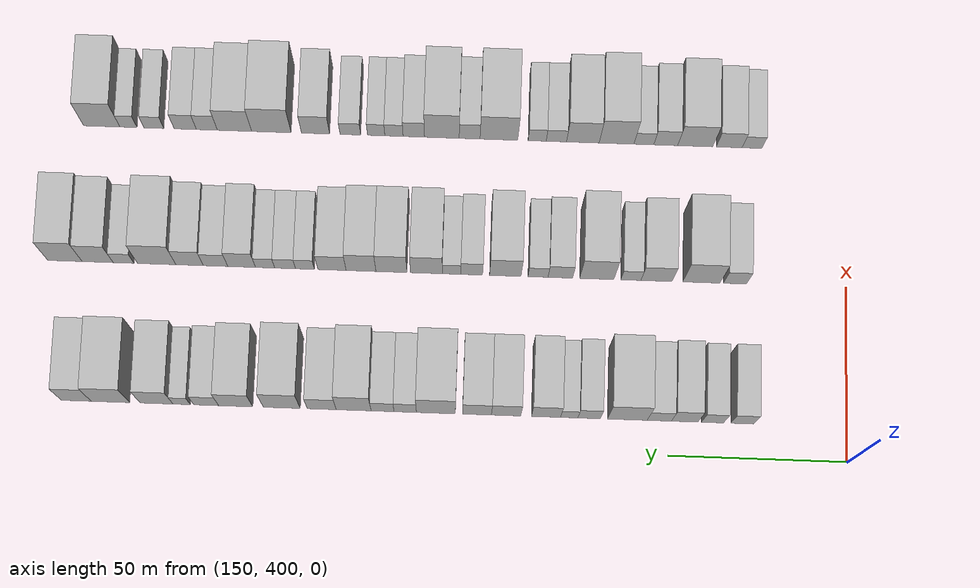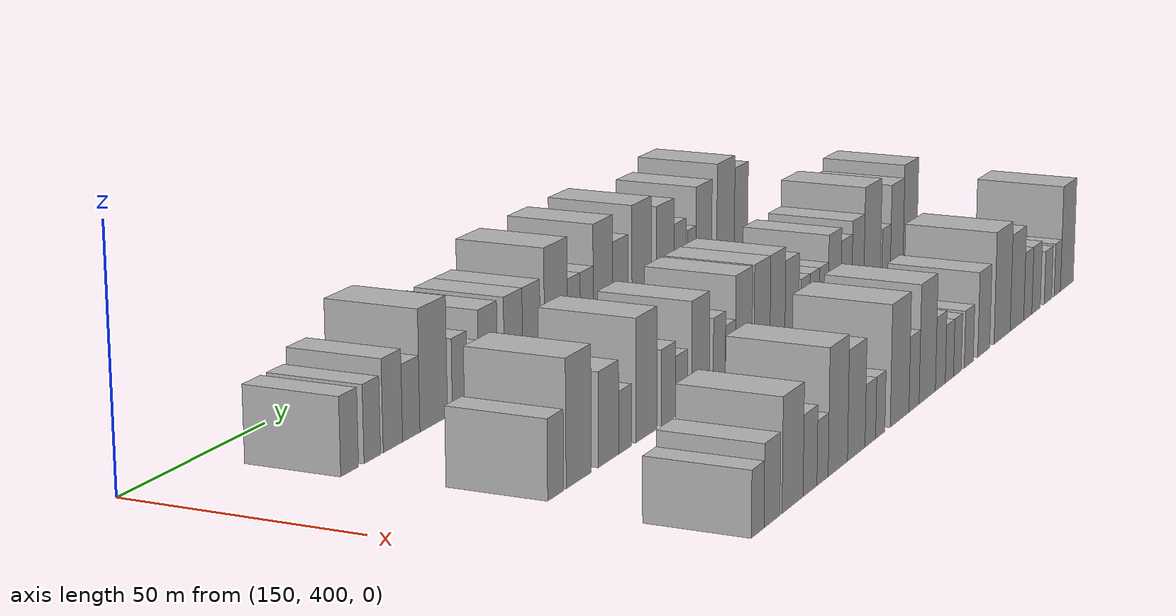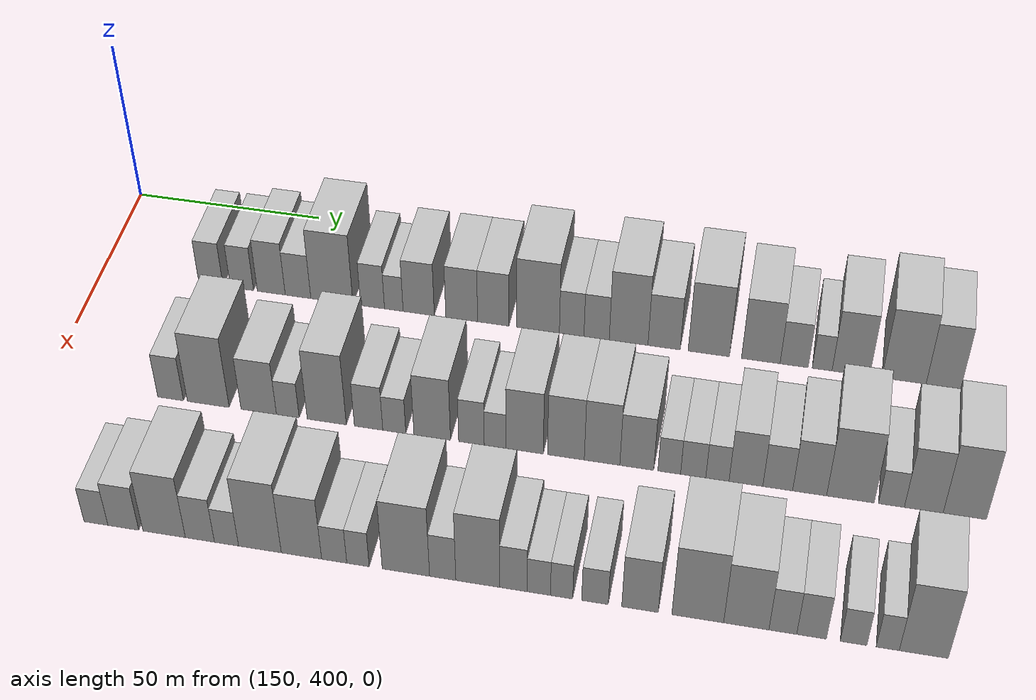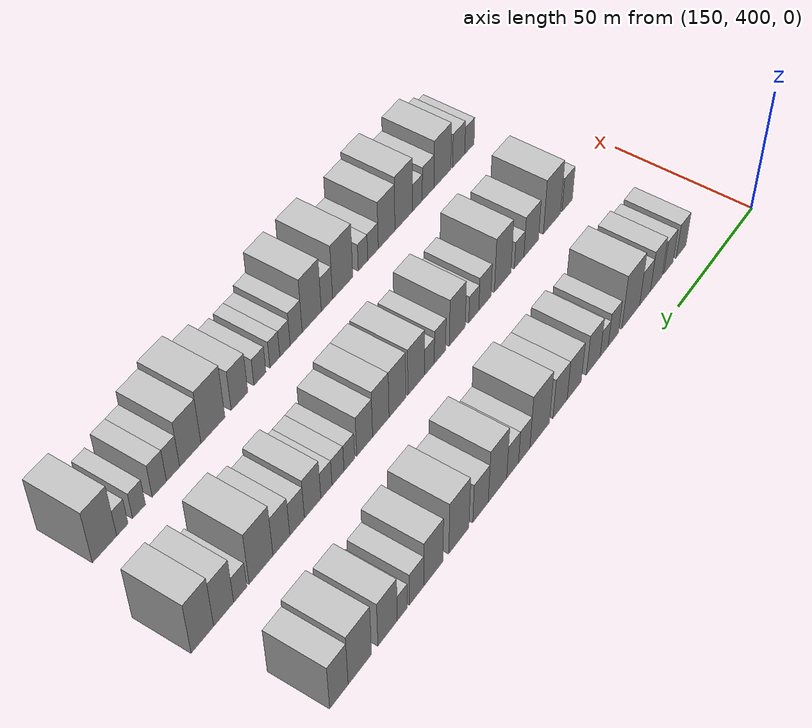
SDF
<sdf version="1.6">
 <world name="default">
  <model name="building_538">
   <static>1</static>
   <pose>170.0000 429.3641 0 0.000000 0.000000 0.000000</pose>
   <link name="link">
    <pose>0 0 7.50 0 0 0</pose>
    <collision name="collision"><geometry><box><size>20.0000 6.5163 15.0000</size></box></geometry></collision>
    <visual name="visual">
     <cast_shadows>0</cast_shadows>
     <geometry><box><size>20.0000 6.5163 15.0000</size></box></geometry>
     <material>
      <script>
       <uri>model://HANNAS_wall/materials/scripts</uri>
       <uri>model://HANNAS_wall/materials/textures</uri>
       <name>vrc/HANNAS_wall</name>
      </script>
     </material>
    </visual>
   </link>
  </model>
  <model name="building_539">
   <static>1</static>
   <pose>170.0000 437.7236 0 0.000000 0.000000 0.000000</pose>
   <link name="link">
    <pose>0 0 7.50 0 0 0</pose>
    <collision name="collision"><geometry><box><size>20.0000 6.2025 15.0000</size></box></geometry></collision>
    <visual name="visual">
     <cast_shadows>0</cast_shadows>
     <geometry><box><size>20.0000 6.2025 15.0000</size></box></geometry>
     <material>
      <script>
       <uri>model://HANNAS_wall/materials/scripts</uri>
       <uri>model://HANNAS_wall/materials/textures</uri>
       <name>vrc/HANNAS_wall</name>
      </script>
     </material>
    </visual>
   </link>
  </model>
  <model name="building_540">
   <static>1</static>
   <pose>170.0000 445.5590 0 0.000000 0.000000 0.000000</pose>
   <link name="link">
    <pose>0 0 9.00 0 0 0</pose>
    <collision name="collision"><geometry><box><size>20.0000 7.4683 18.0000</size></box></geometry></collision>
    <visual name="visual">
     <cast_shadows>0</cast_shadows>
     <geometry><box><size>20.0000 7.4683 18.0000</size></box></geometry>
     <material>
      <script>
       <uri>model://HANNAS_wall/materials/scripts</uri>
       <uri>model://HANNAS_wall/materials/textures</uri>
       <name>vrc/HANNAS_wall</name>
      </script>
     </material>
    </visual>
   </link>
  </model>
  <model name="building_541">
   <static>1</static>
   <pose>170.0000 452.6994 0 0.000000 0.000000 0.000000</pose>
   <link name="link">
    <pose>0 0 7.50 0 0 0</pose>
    <collision name="collision"><geometry><box><size>20.0000 6.8127 15.0000</size></box></geometry></collision>
    <visual name="visual">
     <cast_shadows>0</cast_shadows>
     <geometry><box><size>20.0000 6.8127 15.0000</size></box></geometry>
     <material>
      <script>
       <uri>model://HANNAS_wall/materials/scripts</uri>
       <uri>model://HANNAS_wall/materials/textures</uri>
       <name>vrc/HANNAS_wall</name>
      </script>
     </material>
    </visual>
   </link>
  </model>
  <model name="building_542">
   <static>1</static>
   <pose>170.0000 461.6896 0 0.000000 0.000000 0.000000</pose>
   <link name="link">
    <pose>0 0 12.00 0 0 0</pose>
    <collision name="collision"><geometry><box><size>20.0000 11.1678 24.0000</size></box></geometry></collision>
    <visual name="visual">
     <cast_shadows>0</cast_shadows>
     <geometry><box><size>20.0000 11.1678 24.0000</size></box></geometry>
     <material>
      <script>
       <uri>model://HANNAS_wall/materials/scripts</uri>
       <uri>model://HANNAS_wall/materials/textures</uri>
       <name>vrc/HANNAS_wall</name>
      </script>
     </material>
    </visual>
   </link>
  </model>
  <model name="building_543">
   <static>1</static>
   <pose>170.0000 472.4257 0 0.000000 0.000000 0.000000</pose>
   <link name="link">
    <pose>0 0 7.50 0 0 0</pose>
    <collision name="collision"><geometry><box><size>20.0000 6.3045 15.0000</size></box></geometry></collision>
    <visual name="visual">
     <cast_shadows>0</cast_shadows>
     <geometry><box><size>20.0000 6.3045 15.0000</size></box></geometry>
     <material>
      <script>
       <uri>model://HANNAS_wall/materials/scripts</uri>
       <uri>model://HANNAS_wall/materials/textures</uri>
       <name>vrc/HANNAS_wall</name>
      </script>
     </material>
    </visual>
   </link>
  </model>
  <model name="building_544">
   <static>1</static>
   <pose>170.0000 478.0195 0 0.000000 0.000000 0.000000</pose>
   <link name="link">
    <pose>0 0 6.00 0 0 0</pose>
    <collision name="collision"><geometry><box><size>20.0000 4.8831 12.0000</size></box></geometry></collision>
    <visual name="visual">
     <cast_shadows>0</cast_shadows>
     <geometry><box><size>20.0000 4.8831 12.0000</size></box></geometry>
     <material>
      <script>
       <uri>model://HANNAS_wall/materials/scripts</uri>
       <uri>model://HANNAS_wall/materials/textures</uri>
       <name>vrc/HANNAS_wall</name>
      </script>
     </material>
    </visual>
   </link>
  </model>
  <model name="building_545">
   <static>1</static>
   <pose>170.0000 484.5428 0 0.000000 0.000000 0.000000</pose>
   <link name="link">
    <pose>0 0 9.00 0 0 0</pose>
    <collision name="collision"><geometry><box><size>20.0000 8.1633 18.0000</size></box></geometry></collision>
    <visual name="visual">
     <cast_shadows>0</cast_shadows>
     <geometry><box><size>20.0000 8.1633 18.0000</size></box></geometry>
     <material>
      <script>
       <uri>model://HANNAS_wall/materials/scripts</uri>
       <uri>model://HANNAS_wall/materials/textures</uri>
       <name>vrc/HANNAS_wall</name>
      </script>
     </material>
    </visual>
   </link>
  </model>
  <model name="building_546">
   <static>1</static>
   <pose>170.0000 495.7560 0 0.000000 0.000000 0.000000</pose>
   <link name="link">
    <pose>0 0 9.00 0 0 0</pose>
    <collision name="collision"><geometry><box><size>20.0000 8.2631 18.0000</size></box></geometry></collision>
    <visual name="visual">
     <cast_shadows>0</cast_shadows>
     <geometry><box><size>20.0000 8.2631 18.0000</size></box></geometry>
     <material>
      <script>
       <uri>model://HANNAS_wall/materials/scripts</uri>
       <uri>model://HANNAS_wall/materials/textures</uri>
       <name>vrc/HANNAS_wall</name>
      </script>
     </material>
    </visual>
   </link>
  </model>
  <model name="building_547">
   <static>1</static>
   <pose>170.0000 503.9485 0 0.000000 0.000000 0.000000</pose>
   <link name="link">
    <pose>0 0 9.00 0 0 0</pose>
    <collision name="collision"><geometry><box><size>20.0000 8.1218 18.0000</size></box></geometry></collision>
    <visual name="visual">
     <cast_shadows>0</cast_shadows>
     <geometry><box><size>20.0000 8.1218 18.0000</size></box></geometry>
     <material>
      <script>
       <uri>model://HANNAS_wall/materials/scripts</uri>
       <uri>model://HANNAS_wall/materials/textures</uri>
       <name>vrc/HANNAS_wall</name>
      </script>
     </material>
    </visual>
   </link>
  </model>
  <model name="building_548">
   <static>1</static>
   <pose>170.0000 515.4771 0 0.000000 0.000000 0.000000</pose>
   <link name="link">
    <pose>0 0 12.00 0 0 0</pose>
    <collision name="collision"><geometry><box><size>20.0000 10.9354 24.0000</size></box></geometry></collision>
    <visual name="visual">
     <cast_shadows>0</cast_shadows>
     <geometry><box><size>20.0000 10.9354 24.0000</size></box></geometry>
     <material>
      <script>
       <uri>model://HANNAS_wall/materials/scripts</uri>
       <uri>model://HANNAS_wall/materials/textures</uri>
       <name>vrc/HANNAS_wall</name>
      </script>
     </material>
    </visual>
   </link>
  </model>
  <model name="building_549">
   <static>1</static>
   <pose>170.0000 524.0862 0 0.000000 0.000000 0.000000</pose>
   <link name="link">
    <pose>0 0 7.50 0 0 0</pose>
    <collision name="collision"><geometry><box><size>20.0000 6.2829 15.0000</size></box></geometry></collision>
    <visual name="visual">
     <cast_shadows>0</cast_shadows>
     <geometry><box><size>20.0000 6.2829 15.0000</size></box></geometry>
     <material>
      <script>
       <uri>model://HANNAS_wall/materials/scripts</uri>
       <uri>model://HANNAS_wall/materials/textures</uri>
       <name>vrc/HANNAS_wall</name>
      </script>
     </material>
    </visual>
   </link>
  </model>
  <model name="building_550">
   <static>1</static>
   <pose>170.0000 530.4458 0 0.000000 0.000000 0.000000</pose>
   <link name="link">
    <pose>0 0 7.50 0 0 0</pose>
    <collision name="collision"><geometry><box><size>20.0000 6.4365 15.0000</size></box></geometry></collision>
    <visual name="visual">
     <cast_shadows>0</cast_shadows>
     <geometry><box><size>20.0000 6.4365 15.0000</size></box></geometry>
     <material>
      <script>
       <uri>model://HANNAS_wall/materials/scripts</uri>
       <uri>model://HANNAS_wall/materials/textures</uri>
       <name>vrc/HANNAS_wall</name>
      </script>
     </material>
    </visual>
   </link>
  </model>
  <model name="building_551">
   <static>1</static>
   <pose>170.0000 538.5780 0 0.000000 0.000000 0.000000</pose>
   <link name="link">
    <pose>0 0 12.00 0 0 0</pose>
    <collision name="collision"><geometry><box><size>20.0000 9.8278 24.0000</size></box></geometry></collision>
    <visual name="visual">
     <cast_shadows>0</cast_shadows>
     <geometry><box><size>20.0000 9.8278 24.0000</size></box></geometry>
     <material>
      <script>
       <uri>model://HANNAS_wall/materials/scripts</uri>
       <uri>model://HANNAS_wall/materials/textures</uri>
       <name>vrc/HANNAS_wall</name>
      </script>
     </material>
    </visual>
   </link>
  </model>
  <model name="building_552">
   <static>1</static>
   <pose>170.0000 547.5596 0 0.000000 0.000000 0.000000</pose>
   <link name="link">
    <pose>0 0 9.00 0 0 0</pose>
    <collision name="collision"><geometry><box><size>20.0000 8.1355 18.0000</size></box></geometry></collision>
    <visual name="visual">
     <cast_shadows>0</cast_shadows>
     <geometry><box><size>20.0000 8.1355 18.0000</size></box></geometry>
     <material>
      <script>
       <uri>model://HANNAS_wall/materials/scripts</uri>
       <uri>model://HANNAS_wall/materials/textures</uri>
       <name>vrc/HANNAS_wall</name>
      </script>
     </material>
    </visual>
   </link>
  </model>
  <model name="building_553">
   <static>1</static>
   <pose>170.0000 558.8087 0 0.000000 0.000000 0.000000</pose>
   <link name="link">
    <pose>0 0 12.00 0 0 0</pose>
    <collision name="collision"><geometry><box><size>20.0000 10.3627 24.0000</size></box></geometry></collision>
    <visual name="visual">
     <cast_shadows>0</cast_shadows>
     <geometry><box><size>20.0000 10.3627 24.0000</size></box></geometry>
     <material>
      <script>
       <uri>model://HANNAS_wall/materials/scripts</uri>
       <uri>model://HANNAS_wall/materials/textures</uri>
       <name>vrc/HANNAS_wall</name>
      </script>
     </material>
    </visual>
   </link>
  </model>
  <model name="building_554">
   <static>1</static>
   <pose>170.0000 571.7880 0 0.000000 0.000000 0.000000</pose>
   <link name="link">
    <pose>0 0 10.50 0 0 0</pose>
    <collision name="collision"><geometry><box><size>20.0000 9.5958 21.0000</size></box></geometry></collision>
    <visual name="visual">
     <cast_shadows>0</cast_shadows>
     <geometry><box><size>20.0000 9.5958 21.0000</size></box></geometry>
     <material>
      <script>
       <uri>model://HANNAS_wall/materials/scripts</uri>
       <uri>model://HANNAS_wall/materials/textures</uri>
       <name>vrc/HANNAS_wall</name>
      </script>
     </material>
    </visual>
   </link>
  </model>
  <model name="building_555">
   <static>1</static>
   <pose>170.0000 580.0705 0 0.000000 0.000000 0.000000</pose>
   <link name="link">
    <pose>0 0 7.50 0 0 0</pose>
    <collision name="collision"><geometry><box><size>20.0000 6.9693 15.0000</size></box></geometry></collision>
    <visual name="visual">
     <cast_shadows>0</cast_shadows>
     <geometry><box><size>20.0000 6.9693 15.0000</size></box></geometry>
     <material>
      <script>
       <uri>model://HANNAS_wall/materials/scripts</uri>
       <uri>model://HANNAS_wall/materials/textures</uri>
       <name>vrc/HANNAS_wall</name>
      </script>
     </material>
    </visual>
   </link>
  </model>
  <model name="building_556">
   <static>1</static>
   <pose>170.0000 586.9925 0 0.000000 0.000000 0.000000</pose>
   <link name="link">
    <pose>0 0 6.00 0 0 0</pose>
    <collision name="collision"><geometry><box><size>20.0000 4.8746 12.0000</size></box></geometry></collision>
    <visual name="visual">
     <cast_shadows>0</cast_shadows>
     <geometry><box><size>20.0000 4.8746 12.0000</size></box></geometry>
     <material>
      <script>
       <uri>model://HANNAS_wall/materials/scripts</uri>
       <uri>model://HANNAS_wall/materials/textures</uri>
       <name>vrc/HANNAS_wall</name>
      </script>
     </material>
    </visual>
   </link>
  </model>
  <model name="building_557">
   <static>1</static>
   <pose>170.0000 594.0448 0 0.000000 0.000000 0.000000</pose>
   <link name="link">
    <pose>0 0 10.50 0 0 0</pose>
    <collision name="collision"><geometry><box><size>20.0000 9.2302 21.0000</size></box></geometry></collision>
    <visual name="visual">
     <cast_shadows>0</cast_shadows>
     <geometry><box><size>20.0000 9.2302 21.0000</size></box></geometry>
     <material>
      <script>
       <uri>model://HANNAS_wall/materials/scripts</uri>
       <uri>model://HANNAS_wall/materials/textures</uri>
       <name>vrc/HANNAS_wall</name>
      </script>
     </material>
    </visual>
   </link>
  </model>
  <model name="building_558">
   <static>1</static>
   <pose>170.0000 607.0631 0 0.000000 0.000000 0.000000</pose>
   <link name="link">
    <pose>0 0 12.00 0 0 0</pose>
    <collision name="collision"><geometry><box><size>20.0000 10.8062 24.0000</size></box></geometry></collision>
    <visual name="visual">
     <cast_shadows>0</cast_shadows>
     <geometry><box><size>20.0000 10.8062 24.0000</size></box></geometry>
     <material>
      <script>
       <uri>model://HANNAS_wall/materials/scripts</uri>
       <uri>model://HANNAS_wall/materials/textures</uri>
       <name>vrc/HANNAS_wall</name>
      </script>
     </material>
    </visual>
   </link>
  </model>
  <model name="building_559">
   <static>1</static>
   <pose>170.0000 616.6666 0 0.000000 0.000000 0.000000</pose>
   <link name="link">
    <pose>0 0 10.50 0 0 0</pose>
    <collision name="collision"><geometry><box><size>20.0000 8.4009 21.0000</size></box></geometry></collision>
    <visual name="visual">
     <cast_shadows>0</cast_shadows>
     <geometry><box><size>20.0000 8.4009 21.0000</size></box></geometry>
     <material>
      <script>
       <uri>model://HANNAS_wall/materials/scripts</uri>
       <uri>model://HANNAS_wall/materials/textures</uri>
       <name>vrc/HANNAS_wall</name>
      </script>
     </material>
    </visual>
   </link>
  </model>
  <model name="building_682">
   <static>1</static>
   <pose>210.0000 431.7600 0 0.000000 0.000000 0.000000</pose>
   <link name="link">
    <pose>0 0 7.50 0 0 0</pose>
    <collision name="collision"><geometry><box><size>20.0000 6.5473 15.0000</size></box></geometry></collision>
    <visual name="visual">
     <cast_shadows>0</cast_shadows>
     <geometry><box><size>20.0000 6.5473 15.0000</size></box></geometry>
     <material>
      <script>
       <uri>model://HANNAS_wall/materials/scripts</uri>
       <uri>model://HANNAS_wall/materials/textures</uri>
       <name>vrc/HANNAS_wall</name>
      </script>
     </material>
    </visual>
   </link>
  </model>
  <model name="building_683">
   <static>1</static>
   <pose>210.0000 441.3209 0 0.000000 0.000000 0.000000</pose>
   <link name="link">
    <pose>0 0 12.00 0 0 0</pose>
    <collision name="collision"><geometry><box><size>20.0000 10.5745 24.0000</size></box></geometry></collision>
    <visual name="visual">
     <cast_shadows>0</cast_shadows>
     <geometry><box><size>20.0000 10.5745 24.0000</size></box></geometry>
     <material>
      <script>
       <uri>model://HANNAS_wall/materials/scripts</uri>
       <uri>model://HANNAS_wall/materials/textures</uri>
       <name>vrc/HANNAS_wall</name>
      </script>
     </material>
    </visual>
   </link>
  </model>
  <model name="building_684">
   <static>1</static>
   <pose>210.0000 454.0628 0 0.000000 0.000000 0.000000</pose>
   <link name="link">
    <pose>0 0 9.00 0 0 0</pose>
    <collision name="collision"><geometry><box><size>20.0000 8.9094 18.0000</size></box></geometry></collision>
    <visual name="visual">
     <cast_shadows>0</cast_shadows>
     <geometry><box><size>20.0000 8.9094 18.0000</size></box></geometry>
     <material>
      <script>
       <uri>model://HANNAS_wall/materials/scripts</uri>
       <uri>model://HANNAS_wall/materials/textures</uri>
       <name>vrc/HANNAS_wall</name>
      </script>
     </material>
    </visual>
   </link>
  </model>
  <model name="building_685">
   <static>1</static>
   <pose>210.0000 461.3696 0 0.000000 0.000000 0.000000</pose>
   <link name="link">
    <pose>0 0 6.00 0 0 0</pose>
    <collision name="collision"><geometry><box><size>20.0000 5.7042 12.0000</size></box></geometry></collision>
    <visual name="visual">
     <cast_shadows>0</cast_shadows>
     <geometry><box><size>20.0000 5.7042 12.0000</size></box></geometry>
     <material>
      <script>
       <uri>model://HANNAS_wall/materials/scripts</uri>
       <uri>model://HANNAS_wall/materials/textures</uri>
       <name>vrc/HANNAS_wall</name>
      </script>
     </material>
    </visual>
   </link>
  </model>
  <model name="building_686">
   <static>1</static>
   <pose>210.0000 471.0874 0 0.000000 0.000000 0.000000</pose>
   <link name="link">
    <pose>0 0 12.00 0 0 0</pose>
    <collision name="collision"><geometry><box><size>20.0000 9.7313 24.0000</size></box></geometry></collision>
    <visual name="visual">
     <cast_shadows>0</cast_shadows>
     <geometry><box><size>20.0000 9.7313 24.0000</size></box></geometry>
     <material>
      <script>
       <uri>model://HANNAS_wall/materials/scripts</uri>
       <uri>model://HANNAS_wall/materials/textures</uri>
       <name>vrc/HANNAS_wall</name>
      </script>
     </material>
    </visual>
   </link>
  </model>
  <model name="building_687">
   <static>1</static>
   <pose>210.0000 481.4611 0 0.000000 0.000000 0.000000</pose>
   <link name="link">
    <pose>0 0 7.50 0 0 0</pose>
    <collision name="collision"><geometry><box><size>20.0000 7.0161 15.0000</size></box></geometry></collision>
    <visual name="visual">
     <cast_shadows>0</cast_shadows>
     <geometry><box><size>20.0000 7.0161 15.0000</size></box></geometry>
     <material>
      <script>
       <uri>model://HANNAS_wall/materials/scripts</uri>
       <uri>model://HANNAS_wall/materials/textures</uri>
       <name>vrc/HANNAS_wall</name>
      </script>
     </material>
    </visual>
   </link>
  </model>
  <model name="building_688">
   <static>1</static>
   <pose>210.0000 487.8111 0 0.000000 0.000000 0.000000</pose>
   <link name="link">
    <pose>0 0 6.00 0 0 0</pose>
    <collision name="collision"><geometry><box><size>20.0000 5.6840 12.0000</size></box></geometry></collision>
    <visual name="visual">
     <cast_shadows>0</cast_shadows>
     <geometry><box><size>20.0000 5.6840 12.0000</size></box></geometry>
     <material>
      <script>
       <uri>model://HANNAS_wall/materials/scripts</uri>
       <uri>model://HANNAS_wall/materials/textures</uri>
       <name>vrc/HANNAS_wall</name>
      </script>
     </material>
    </visual>
   </link>
  </model>
  <model name="building_689">
   <static>1</static>
   <pose>210.0000 497.1327 0 0.000000 0.000000 0.000000</pose>
   <link name="link">
    <pose>0 0 10.50 0 0 0</pose>
    <collision name="collision"><geometry><box><size>20.0000 8.9590 21.0000</size></box></geometry></collision>
    <visual name="visual">
     <cast_shadows>0</cast_shadows>
     <geometry><box><size>20.0000 8.9590 21.0000</size></box></geometry>
     <material>
      <script>
       <uri>model://HANNAS_wall/materials/scripts</uri>
       <uri>model://HANNAS_wall/materials/textures</uri>
       <name>vrc/HANNAS_wall</name>
      </script>
     </material>
    </visual>
   </link>
  </model>
  <model name="building_690">
   <static>1</static>
   <pose>210.0000 506.7243 0 0.000000 0.000000 0.000000</pose>
   <link name="link">
    <pose>0 0 7.50 0 0 0</pose>
    <collision name="collision"><geometry><box><size>20.0000 6.2243 15.0000</size></box></geometry></collision>
    <visual name="visual">
     <cast_shadows>0</cast_shadows>
     <geometry><box><size>20.0000 6.2243 15.0000</size></box></geometry>
     <material>
      <script>
       <uri>model://HANNAS_wall/materials/scripts</uri>
       <uri>model://HANNAS_wall/materials/textures</uri>
       <name>vrc/HANNAS_wall</name>
      </script>
     </material>
    </visual>
   </link>
  </model>
  <model name="building_691">
   <static>1</static>
   <pose>210.0000 512.4554 0 0.000000 0.000000 0.000000</pose>
   <link name="link">
    <pose>0 0 6.00 0 0 0</pose>
    <collision name="collision"><geometry><box><size>20.0000 5.2380 12.0000</size></box></geometry></collision>
    <visual name="visual">
     <cast_shadows>0</cast_shadows>
     <geometry><box><size>20.0000 5.2380 12.0000</size></box></geometry>
     <material>
      <script>
       <uri>model://HANNAS_wall/materials/scripts</uri>
       <uri>model://HANNAS_wall/materials/textures</uri>
       <name>vrc/HANNAS_wall</name>
      </script>
     </material>
    </visual>
   </link>
  </model>
  <model name="building_692">
   <static>1</static>
   <pose>210.0000 519.6014 0 0.000000 0.000000 0.000000</pose>
   <link name="link">
    <pose>0 0 10.50 0 0 0</pose>
    <collision name="collision"><geometry><box><size>20.0000 9.0540 21.0000</size></box></geometry></collision>
    <visual name="visual">
     <cast_shadows>0</cast_shadows>
     <geometry><box><size>20.0000 9.0540 21.0000</size></box></geometry>
     <material>
      <script>
       <uri>model://HANNAS_wall/materials/scripts</uri>
       <uri>model://HANNAS_wall/materials/textures</uri>
       <name>vrc/HANNAS_wall</name>
      </script>
     </material>
    </visual>
   </link>
  </model>
  <model name="building_693">
   <static>1</static>
   <pose>210.0000 529.5485 0 0.000000 0.000000 0.000000</pose>
   <link name="link">
    <pose>0 0 10.50 0 0 0</pose>
    <collision name="collision"><geometry><box><size>20.0000 8.8403 21.0000</size></box></geometry></collision>
    <visual name="visual">
     <cast_shadows>0</cast_shadows>
     <geometry><box><size>20.0000 8.8403 21.0000</size></box></geometry>
     <material>
      <script>
       <uri>model://HANNAS_wall/materials/scripts</uri>
       <uri>model://HANNAS_wall/materials/textures</uri>
       <name>vrc/HANNAS_wall</name>
      </script>
     </material>
    </visual>
   </link>
  </model>
  <model name="building_694">
   <static>1</static>
   <pose>210.0000 538.2198 0 0.000000 0.000000 0.000000</pose>
   <link name="link">
    <pose>0 0 10.50 0 0 0</pose>
    <collision name="collision"><geometry><box><size>20.0000 8.5023 21.0000</size></box></geometry></collision>
    <visual name="visual">
     <cast_shadows>0</cast_shadows>
     <geometry><box><size>20.0000 8.5023 21.0000</size></box></geometry>
     <material>
      <script>
       <uri>model://HANNAS_wall/materials/scripts</uri>
       <uri>model://HANNAS_wall/materials/textures</uri>
       <name>vrc/HANNAS_wall</name>
      </script>
     </material>
    </visual>
   </link>
  </model>
  <model name="building_695">
   <static>1</static>
   <pose>210.0000 546.4975 0 0.000000 0.000000 0.000000</pose>
   <link name="link">
    <pose>0 0 9.00 0 0 0</pose>
    <collision name="collision"><geometry><box><size>20.0000 8.0530 18.0000</size></box></geometry></collision>
    <visual name="visual">
     <cast_shadows>0</cast_shadows>
     <geometry><box><size>20.0000 8.0530 18.0000</size></box></geometry>
     <material>
      <script>
       <uri>model://HANNAS_wall/materials/scripts</uri>
       <uri>model://HANNAS_wall/materials/textures</uri>
       <name>vrc/HANNAS_wall</name>
      </script>
     </material>
    </visual>
   </link>
  </model>
  <model name="building_696">
   <static>1</static>
   <pose>210.0000 554.2047 0 0.000000 0.000000 0.000000</pose>
   <link name="link">
    <pose>0 0 6.00 0 0 0</pose>
    <collision name="collision"><geometry><box><size>20.0000 5.3615 12.0000</size></box></geometry></collision>
    <visual name="visual">
     <cast_shadows>0</cast_shadows>
     <geometry><box><size>20.0000 5.3615 12.0000</size></box></geometry>
     <material>
      <script>
       <uri>model://HANNAS_wall/materials/scripts</uri>
       <uri>model://HANNAS_wall/materials/textures</uri>
       <name>vrc/HANNAS_wall</name>
      </script>
     </material>
    </visual>
   </link>
  </model>
  <model name="building_697">
   <static>1</static>
   <pose>210.0000 559.8607 0 0.000000 0.000000 0.000000</pose>
   <link name="link">
    <pose>0 0 6.00 0 0 0</pose>
    <collision name="collision"><geometry><box><size>20.0000 5.9503 12.0000</size></box></geometry></collision>
    <visual name="visual">
     <cast_shadows>0</cast_shadows>
     <geometry><box><size>20.0000 5.9503 12.0000</size></box></geometry>
     <material>
      <script>
       <uri>model://HANNAS_wall/materials/scripts</uri>
       <uri>model://HANNAS_wall/materials/textures</uri>
       <name>vrc/HANNAS_wall</name>
      </script>
     </material>
    </visual>
   </link>
  </model>
  <model name="building_698">
   <static>1</static>
   <pose>210.0000 565.5665 0 0.000000 0.000000 0.000000</pose>
   <link name="link">
    <pose>0 0 6.00 0 0 0</pose>
    <collision name="collision"><geometry><box><size>20.0000 5.4613 12.0000</size></box></geometry></collision>
    <visual name="visual">
     <cast_shadows>0</cast_shadows>
     <geometry><box><size>20.0000 5.4613 12.0000</size></box></geometry>
     <material>
      <script>
       <uri>model://HANNAS_wall/materials/scripts</uri>
       <uri>model://HANNAS_wall/materials/textures</uri>
       <name>vrc/HANNAS_wall</name>
      </script>
     </material>
    </visual>
   </link>
  </model>
  <model name="building_699">
   <static>1</static>
   <pose>210.0000 572.2530 0 0.000000 0.000000 0.000000</pose>
   <link name="link">
    <pose>0 0 9.00 0 0 0</pose>
    <collision name="collision"><geometry><box><size>20.0000 7.9118 18.0000</size></box></geometry></collision>
    <visual name="visual">
     <cast_shadows>0</cast_shadows>
     <geometry><box><size>20.0000 7.9118 18.0000</size></box></geometry>
     <material>
      <script>
       <uri>model://HANNAS_wall/materials/scripts</uri>
       <uri>model://HANNAS_wall/materials/textures</uri>
       <name>vrc/HANNAS_wall</name>
      </script>
     </material>
    </visual>
   </link>
  </model>
  <model name="building_700">
   <static>1</static>
   <pose>210.0000 579.6837 0 0.000000 0.000000 0.000000</pose>
   <link name="link">
    <pose>0 0 7.50 0 0 0</pose>
    <collision name="collision"><geometry><box><size>20.0000 6.9496 15.0000</size></box></geometry></collision>
    <visual name="visual">
     <cast_shadows>0</cast_shadows>
     <geometry><box><size>20.0000 6.9496 15.0000</size></box></geometry>
     <material>
      <script>
       <uri>model://HANNAS_wall/materials/scripts</uri>
       <uri>model://HANNAS_wall/materials/textures</uri>
       <name>vrc/HANNAS_wall</name>
      </script>
     </material>
    </visual>
   </link>
  </model>
  <model name="building_701">
   <static>1</static>
   <pose>210.0000 587.0993 0 0.000000 0.000000 0.000000</pose>
   <link name="link">
    <pose>0 0 9.00 0 0 0</pose>
    <collision name="collision"><geometry><box><size>20.0000 7.8815 18.0000</size></box></geometry></collision>
    <visual name="visual">
     <cast_shadows>0</cast_shadows>
     <geometry><box><size>20.0000 7.8815 18.0000</size></box></geometry>
     <material>
      <script>
       <uri>model://HANNAS_wall/materials/scripts</uri>
       <uri>model://HANNAS_wall/materials/textures</uri>
       <name>vrc/HANNAS_wall</name>
      </script>
     </material>
    </visual>
   </link>
  </model>
  <model name="building_702">
   <static>1</static>
   <pose>210.0000 596.5272 0 0.000000 0.000000 0.000000</pose>
   <link name="link">
    <pose>0 0 12.00 0 0 0</pose>
    <collision name="collision"><geometry><box><size>20.0000 10.9743 24.0000</size></box></geometry></collision>
    <visual name="visual">
     <cast_shadows>0</cast_shadows>
     <geometry><box><size>20.0000 10.9743 24.0000</size></box></geometry>
     <material>
      <script>
       <uri>model://HANNAS_wall/materials/scripts</uri>
       <uri>model://HANNAS_wall/materials/textures</uri>
       <name>vrc/HANNAS_wall</name>
      </script>
     </material>
    </visual>
   </link>
  </model>
  <model name="building_703">
   <static>1</static>
   <pose>210.0000 605.9771 0 0.000000 0.000000 0.000000</pose>
   <link name="link">
    <pose>0 0 6.00 0 0 0</pose>
    <collision name="collision"><geometry><box><size>20.0000 5.9254 12.0000</size></box></geometry></collision>
    <visual name="visual">
     <cast_shadows>0</cast_shadows>
     <geometry><box><size>20.0000 5.9254 12.0000</size></box></geometry>
     <material>
      <script>
       <uri>model://HANNAS_wall/materials/scripts</uri>
       <uri>model://HANNAS_wall/materials/textures</uri>
       <name>vrc/HANNAS_wall</name>
      </script>
     </material>
    </visual>
   </link>
  </model>
  <model name="building_704">
   <static>1</static>
   <pose>210.0000 613.3642 0 0.000000 0.000000 0.000000</pose>
   <link name="link">
    <pose>0 0 10.50 0 0 0</pose>
    <collision name="collision"><geometry><box><size>20.0000 8.8488 21.0000</size></box></geometry></collision>
    <visual name="visual">
     <cast_shadows>0</cast_shadows>
     <geometry><box><size>20.0000 8.8488 21.0000</size></box></geometry>
     <material>
      <script>
       <uri>model://HANNAS_wall/materials/scripts</uri>
       <uri>model://HANNAS_wall/materials/textures</uri>
       <name>vrc/HANNAS_wall</name>
      </script>
     </material>
    </visual>
   </link>
  </model>
  <model name="building_705">
   <static>1</static>
   <pose>210.0000 622.6991 0 0.000000 0.000000 0.000000</pose>
   <link name="link">
    <pose>0 0 12.00 0 0 0</pose>
    <collision name="collision"><geometry><box><size>20.0000 9.8210 24.0000</size></box></geometry></collision>
    <visual name="visual">
     <cast_shadows>0</cast_shadows>
     <geometry><box><size>20.0000 9.8210 24.0000</size></box></geometry>
     <material>
      <script>
       <uri>model://HANNAS_wall/materials/scripts</uri>
       <uri>model://HANNAS_wall/materials/textures</uri>
       <name>vrc/HANNAS_wall</name>
      </script>
     </material>
    </visual>
   </link>
  </model>
  <model name="building_822">
   <static>1</static>
   <pose>250.0000 427.1784 0 0.000000 0.000000 0.000000</pose>
   <link name="link">
    <pose>0 0 6.00 0 0 0</pose>
    <collision name="collision"><geometry><box><size>20.0000 5.7418 12.0000</size></box></geometry></collision>
    <visual name="visual">
     <cast_shadows>0</cast_shadows>
     <geometry><box><size>20.0000 5.7418 12.0000</size></box></geometry>
     <material>
      <script>
       <uri>model://HANNAS_wall/materials/scripts</uri>
       <uri>model://HANNAS_wall/materials/textures</uri>
       <name>vrc/HANNAS_wall</name>
      </script>
     </material>
    </visual>
   </link>
  </model>
  <model name="building_823">
   <static>1</static>
   <pose>250.0000 433.7538 0 0.000000 0.000000 0.000000</pose>
   <link name="link">
    <pose>0 0 7.50 0 0 0</pose>
    <collision name="collision"><geometry><box><size>20.0000 7.4091 15.0000</size></box></geometry></collision>
    <visual name="visual">
     <cast_shadows>0</cast_shadows>
     <geometry><box><size>20.0000 7.4091 15.0000</size></box></geometry>
     <material>
      <script>
       <uri>model://HANNAS_wall/materials/scripts</uri>
       <uri>model://HANNAS_wall/materials/textures</uri>
       <name>vrc/HANNAS_wall</name>
      </script>
     </material>
    </visual>
   </link>
  </model>
  <model name="building_824">
   <static>1</static>
   <pose>250.0000 443.5244 0 0.000000 0.000000 0.000000</pose>
   <link name="link">
    <pose>0 0 10.50 0 0 0</pose>
    <collision name="collision"><geometry><box><size>20.0000 10.1320 21.0000</size></box></geometry></collision>
    <visual name="visual">
     <cast_shadows>0</cast_shadows>
     <geometry><box><size>20.0000 10.1320 21.0000</size></box></geometry>
     <material>
      <script>
       <uri>model://HANNAS_wall/materials/scripts</uri>
       <uri>model://HANNAS_wall/materials/textures</uri>
       <name>vrc/HANNAS_wall</name>
      </script>
     </material>
    </visual>
   </link>
  </model>
  <model name="building_825">
   <static>1</static>
   <pose>250.0000 452.0335 0 0.000000 0.000000 0.000000</pose>
   <link name="link">
    <pose>0 0 7.50 0 0 0</pose>
    <collision name="collision"><geometry><box><size>20.0000 6.8863 15.0000</size></box></geometry></collision>
    <visual name="visual">
     <cast_shadows>0</cast_shadows>
     <geometry><box><size>20.0000 6.8863 15.0000</size></box></geometry>
     <material>
      <script>
       <uri>model://HANNAS_wall/materials/scripts</uri>
       <uri>model://HANNAS_wall/materials/textures</uri>
       <name>vrc/HANNAS_wall</name>
      </script>
     </material>
    </visual>
   </link>
  </model>
  <model name="building_826">
   <static>1</static>
   <pose>250.0000 458.3287 0 0.000000 0.000000 0.000000</pose>
   <link name="link">
    <pose>0 0 6.00 0 0 0</pose>
    <collision name="collision"><geometry><box><size>20.0000 5.7040 12.0000</size></box></geometry></collision>
    <visual name="visual">
     <cast_shadows>0</cast_shadows>
     <geometry><box><size>20.0000 5.7040 12.0000</size></box></geometry>
     <material>
      <script>
       <uri>model://HANNAS_wall/materials/scripts</uri>
       <uri>model://HANNAS_wall/materials/textures</uri>
       <name>vrc/HANNAS_wall</name>
      </script>
     </material>
    </visual>
   </link>
  </model>
  <model name="building_827">
   <static>1</static>
   <pose>250.0000 466.2035 0 0.000000 0.000000 0.000000</pose>
   <link name="link">
    <pose>0 0 12.00 0 0 0</pose>
    <collision name="collision"><geometry><box><size>20.0000 10.0457 24.0000</size></box></geometry></collision>
    <visual name="visual">
     <cast_shadows>0</cast_shadows>
     <geometry><box><size>20.0000 10.0457 24.0000</size></box></geometry>
     <material>
      <script>
       <uri>model://HANNAS_wall/materials/scripts</uri>
       <uri>model://HANNAS_wall/materials/textures</uri>
       <name>vrc/HANNAS_wall</name>
      </script>
     </material>
    </visual>
   </link>
  </model>
  <model name="building_828">
   <static>1</static>
   <pose>250.0000 475.9390 0 0.000000 0.000000 0.000000</pose>
   <link name="link">
    <pose>0 0 10.50 0 0 0</pose>
    <collision name="collision"><geometry><box><size>20.0000 9.4253 21.0000</size></box></geometry></collision>
    <visual name="visual">
     <cast_shadows>0</cast_shadows>
     <geometry><box><size>20.0000 9.4253 21.0000</size></box></geometry>
     <material>
      <script>
       <uri>model://HANNAS_wall/materials/scripts</uri>
       <uri>model://HANNAS_wall/materials/textures</uri>
       <name>vrc/HANNAS_wall</name>
      </script>
     </material>
    </visual>
   </link>
  </model>
  <model name="building_829">
   <static>1</static>
   <pose>250.0000 483.5758 0 0.000000 0.000000 0.000000</pose>
   <link name="link">
    <pose>0 0 6.00 0 0 0</pose>
    <collision name="collision"><geometry><box><size>20.0000 5.8482 12.0000</size></box></geometry></collision>
    <visual name="visual">
     <cast_shadows>0</cast_shadows>
     <geometry><box><size>20.0000 5.8482 12.0000</size></box></geometry>
     <material>
      <script>
       <uri>model://HANNAS_wall/materials/scripts</uri>
       <uri>model://HANNAS_wall/materials/textures</uri>
       <name>vrc/HANNAS_wall</name>
      </script>
     </material>
    </visual>
   </link>
  </model>
  <model name="building_830">
   <static>1</static>
   <pose>250.0000 489.0976 0 0.000000 0.000000 0.000000</pose>
   <link name="link">
    <pose>0 0 6.00 0 0 0</pose>
    <collision name="collision"><geometry><box><size>20.0000 5.1953 12.0000</size></box></geometry></collision>
    <visual name="visual">
     <cast_shadows>0</cast_shadows>
     <geometry><box><size>20.0000 5.1953 12.0000</size></box></geometry>
     <material>
      <script>
       <uri>model://HANNAS_wall/materials/scripts</uri>
       <uri>model://HANNAS_wall/materials/textures</uri>
       <name>vrc/HANNAS_wall</name>
      </script>
     </material>
    </visual>
   </link>
  </model>
  <model name="building_831">
   <static>1</static>
   <pose>250.0000 500.1429 0 0.000000 0.000000 0.000000</pose>
   <link name="link">
    <pose>0 0 12.00 0 0 0</pose>
    <collision name="collision"><geometry><box><size>20.0000 10.8953 24.0000</size></box></geometry></collision>
    <visual name="visual">
     <cast_shadows>0</cast_shadows>
     <geometry><box><size>20.0000 10.8953 24.0000</size></box></geometry>
     <material>
      <script>
       <uri>model://HANNAS_wall/materials/scripts</uri>
       <uri>model://HANNAS_wall/materials/textures</uri>
       <name>vrc/HANNAS_wall</name>
      </script>
     </material>
    </visual>
   </link>
  </model>
  <model name="building_832">
   <static>1</static>
   <pose>250.0000 508.5959 0 0.000000 0.000000 0.000000</pose>
   <link name="link">
    <pose>0 0 7.50 0 0 0</pose>
    <collision name="collision"><geometry><box><size>20.0000 6.0108 15.0000</size></box></geometry></collision>
    <visual name="visual">
     <cast_shadows>0</cast_shadows>
     <geometry><box><size>20.0000 6.0108 15.0000</size></box></geometry>
     <material>
      <script>
       <uri>model://HANNAS_wall/materials/scripts</uri>
       <uri>model://HANNAS_wall/materials/textures</uri>
       <name>vrc/HANNAS_wall</name>
      </script>
     </material>
    </visual>
   </link>
  </model>
  <model name="building_833">
   <static>1</static>
   <pose>250.0000 516.6048 0 0.000000 0.000000 0.000000</pose>
   <link name="link">
    <pose>0 0 12.00 0 0 0</pose>
    <collision name="collision"><geometry><box><size>20.0000 10.0069 24.0000</size></box></geometry></collision>
    <visual name="visual">
     <cast_shadows>0</cast_shadows>
     <geometry><box><size>20.0000 10.0069 24.0000</size></box></geometry>
     <material>
      <script>
       <uri>model://HANNAS_wall/materials/scripts</uri>
       <uri>model://HANNAS_wall/materials/textures</uri>
       <name>vrc/HANNAS_wall</name>
      </script>
     </material>
    </visual>
   </link>
  </model>
  <model name="building_834">
   <static>1</static>
   <pose>250.0000 524.7005 0 0.000000 0.000000 0.000000</pose>
   <link name="link">
    <pose>0 0 7.50 0 0 0</pose>
    <collision name="collision"><geometry><box><size>20.0000 6.1844 15.0000</size></box></geometry></collision>
    <visual name="visual">
     <cast_shadows>0</cast_shadows>
     <geometry><box><size>20.0000 6.1844 15.0000</size></box></geometry>
     <material>
      <script>
       <uri>model://HANNAS_wall/materials/scripts</uri>
       <uri>model://HANNAS_wall/materials/textures</uri>
       <name>vrc/HANNAS_wall</name>
      </script>
     </material>
    </visual>
   </link>
  </model>
  <model name="building_835">
   <static>1</static>
   <pose>250.0000 530.4200 0 0.000000 0.000000 0.000000</pose>
   <link name="link">
    <pose>0 0 6.00 0 0 0</pose>
    <collision name="collision"><geometry><box><size>20.0000 5.2546 12.0000</size></box></geometry></collision>
    <visual name="visual">
     <cast_shadows>0</cast_shadows>
     <geometry><box><size>20.0000 5.2546 12.0000</size></box></geometry>
     <material>
      <script>
       <uri>model://HANNAS_wall/materials/scripts</uri>
       <uri>model://HANNAS_wall/materials/textures</uri>
       <name>vrc/HANNAS_wall</name>
      </script>
     </material>
    </visual>
   </link>
  </model>
  <model name="building_836">
   <static>1</static>
   <pose>250.0000 535.5439 0 0.000000 0.000000 0.000000</pose>
   <link name="link">
    <pose>0 0 6.00 0 0 0</pose>
    <collision name="collision"><geometry><box><size>20.0000 4.9933 12.0000</size></box></geometry></collision>
    <visual name="visual">
     <cast_shadows>0</cast_shadows>
     <geometry><box><size>20.0000 4.9933 12.0000</size></box></geometry>
     <material>
      <script>
       <uri>model://HANNAS_wall/materials/scripts</uri>
       <uri>model://HANNAS_wall/materials/textures</uri>
       <name>vrc/HANNAS_wall</name>
      </script>
     </material>
    </visual>
   </link>
  </model>
  <model name="building_837">
   <static>1</static>
   <pose>250.0000 543.0204 0 0.000000 0.000000 0.000000</pose>
   <link name="link">
    <pose>0 0 6.00 0 0 0</pose>
    <collision name="collision"><geometry><box><size>20.0000 5.9597 12.0000</size></box></geometry></collision>
    <visual name="visual">
     <cast_shadows>0</cast_shadows>
     <geometry><box><size>20.0000 5.9597 12.0000</size></box></geometry>
     <material>
      <script>
       <uri>model://HANNAS_wall/materials/scripts</uri>
       <uri>model://HANNAS_wall/materials/textures</uri>
       <name>vrc/HANNAS_wall</name>
      </script>
     </material>
    </visual>
   </link>
  </model>
  <model name="building_838">
   <static>1</static>
   <pose>250.0000 553.0625 0 0.000000 0.000000 0.000000</pose>
   <link name="link">
    <pose>0 0 9.00 0 0 0</pose>
    <collision name="collision"><geometry><box><size>20.0000 8.1244 18.0000</size></box></geometry></collision>
    <visual name="visual">
     <cast_shadows>0</cast_shadows>
     <geometry><box><size>20.0000 8.1244 18.0000</size></box></geometry>
     <material>
      <script>
       <uri>model://HANNAS_wall/materials/scripts</uri>
       <uri>model://HANNAS_wall/materials/textures</uri>
       <name>vrc/HANNAS_wall</name>
      </script>
     </material>
    </visual>
   </link>
  </model>
  <model name="building_839">
   <static>1</static>
   <pose>250.0000 565.8373 0 0.000000 0.000000 0.000000</pose>
   <link name="link">
    <pose>0 0 12.00 0 0 0</pose>
    <collision name="collision"><geometry><box><size>20.0000 11.4253 24.0000</size></box></geometry></collision>
    <visual name="visual">
     <cast_shadows>0</cast_shadows>
     <geometry><box><size>20.0000 11.4253 24.0000</size></box></geometry>
     <material>
      <script>
       <uri>model://HANNAS_wall/materials/scripts</uri>
       <uri>model://HANNAS_wall/materials/textures</uri>
       <name>vrc/HANNAS_wall</name>
      </script>
     </material>
    </visual>
   </link>
  </model>
  <model name="building_840">
   <static>1</static>
   <pose>250.0000 576.4999 0 0.000000 0.000000 0.000000</pose>
   <link name="link">
    <pose>0 0 10.50 0 0 0</pose>
    <collision name="collision"><geometry><box><size>20.0000 9.8998 21.0000</size></box></geometry></collision>
    <visual name="visual">
     <cast_shadows>0</cast_shadows>
     <geometry><box><size>20.0000 9.8998 21.0000</size></box></geometry>
     <material>
      <script>
       <uri>model://HANNAS_wall/materials/scripts</uri>
       <uri>model://HANNAS_wall/materials/textures</uri>
       <name>vrc/HANNAS_wall</name>
      </script>
     </material>
    </visual>
   </link>
  </model>
  <model name="building_841">
   <static>1</static>
   <pose>250.0000 584.4748 0 0.000000 0.000000 0.000000</pose>
   <link name="link">
    <pose>0 0 7.50 0 0 0</pose>
    <collision name="collision"><geometry><box><size>20.0000 6.0499 15.0000</size></box></geometry></collision>
    <visual name="visual">
     <cast_shadows>0</cast_shadows>
     <geometry><box><size>20.0000 6.0499 15.0000</size></box></geometry>
     <material>
      <script>
       <uri>model://HANNAS_wall/materials/scripts</uri>
       <uri>model://HANNAS_wall/materials/textures</uri>
       <name>vrc/HANNAS_wall</name>
      </script>
     </material>
    </visual>
   </link>
  </model>
  <model name="building_842">
   <static>1</static>
   <pose>250.0000 590.7191 0 0.000000 0.000000 0.000000</pose>
   <link name="link">
    <pose>0 0 7.50 0 0 0</pose>
    <collision name="collision"><geometry><box><size>20.0000 6.4389 15.0000</size></box></geometry></collision>
    <visual name="visual">
     <cast_shadows>0</cast_shadows>
     <geometry><box><size>20.0000 6.4389 15.0000</size></box></geometry>
     <material>
      <script>
       <uri>model://HANNAS_wall/materials/scripts</uri>
       <uri>model://HANNAS_wall/materials/textures</uri>
       <name>vrc/HANNAS_wall</name>
      </script>
     </material>
    </visual>
   </link>
  </model>
  <model name="building_843">
   <static>1</static>
   <pose>250.0000 599.8065 0 0.000000 0.000000 0.000000</pose>
   <link name="link">
    <pose>0 0 6.00 0 0 0</pose>
    <collision name="collision"><geometry><box><size>20.0000 5.7359 12.0000</size></box></geometry></collision>
    <visual name="visual">
     <cast_shadows>0</cast_shadows>
     <geometry><box><size>20.0000 5.7359 12.0000</size></box></geometry>
     <material>
      <script>
       <uri>model://HANNAS_wall/materials/scripts</uri>
       <uri>model://HANNAS_wall/materials/textures</uri>
       <name>vrc/HANNAS_wall</name>
      </script>
     </material>
    </visual>
   </link>
  </model>
  <model name="building_844">
   <static>1</static>
   <pose>250.0000 607.1476 0 0.000000 0.000000 0.000000</pose>
   <link name="link">
    <pose>0 0 6.00 0 0 0</pose>
    <collision name="collision"><geometry><box><size>20.0000 4.9463 12.0000</size></box></geometry></collision>
    <visual name="visual">
     <cast_shadows>0</cast_shadows>
     <geometry><box><size>20.0000 4.9463 12.0000</size></box></geometry>
     <material>
      <script>
       <uri>model://HANNAS_wall/materials/scripts</uri>
       <uri>model://HANNAS_wall/materials/textures</uri>
       <name>vrc/HANNAS_wall</name>
      </script>
     </material>
    </visual>
   </link>
  </model>
  <model name="building_845">
   <static>1</static>
   <pose>250.0000 614.8545 0 0.000000 0.000000 0.000000</pose>
   <link name="link">
    <pose>0 0 12.00 0 0 0</pose>
    <collision name="collision"><geometry><box><size>20.0000 10.4675 24.0000</size></box></geometry></collision>
    <visual name="visual">
     <cast_shadows>0</cast_shadows>
     <geometry><box><size>20.0000 10.4675 24.0000</size></box></geometry>
     <material>
      <script>
       <uri>model://HANNAS_wall/materials/scripts</uri>
       <uri>model://HANNAS_wall/materials/textures</uri>
       <name>vrc/HANNAS_wall</name>
      </script>
     </material>
    </visual>
   </link>
  </model>
 </world>
</sdf>
